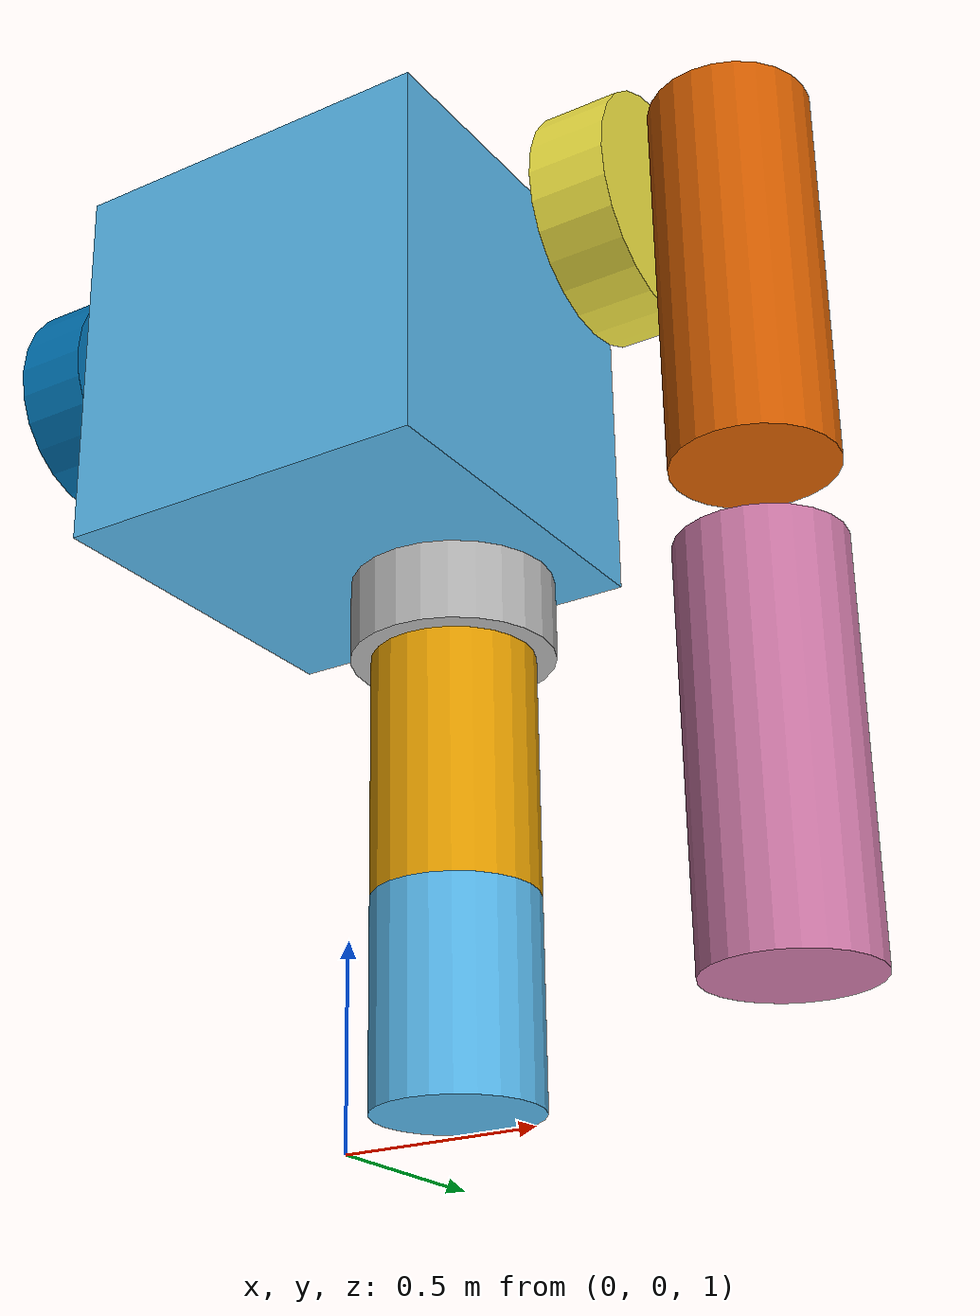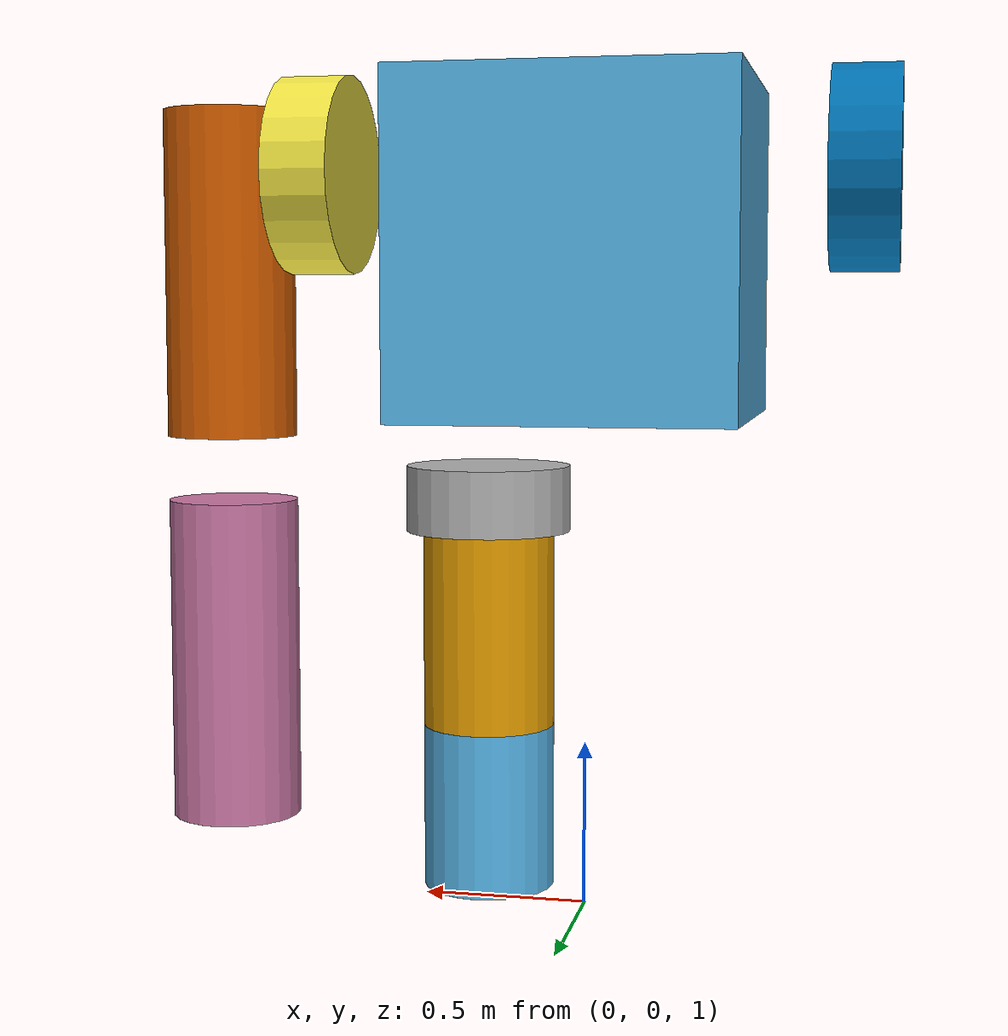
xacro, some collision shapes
<?xml version="1.0"?>
    <robot xmlns:xacro="http://ros.org/wiki/xacro" name="practice_creation">

        <link name="world"></link>

        <joint name="world_to_base" type="fixed">
            <parent link="world"></parent>
            <child link="base"></child>
            <origin xyz="0 0 3" rpy="0 0 0"></origin>
        </joint>

        <link name="base">
            <visual>
                <origin xyz="0 0.25 0" rpy="1.57 0.075 0"/>

                <geometry>
                    <mesh filename="~/simulation/ros2_ws/src/sim_files/meshes/pentagon_shape.stl" scale="0.015 0.015 0.1"/>
                </geometry>
            </visual>

            <collision>
                <geometry>
                    <box size="1 1 1"></box>
                </geometry>
            </collision>

            <inertial>  <!-- These inirtial values are stupid, replace them with something actually real eventually-->
                <mass value="10.0"/>
                <origin xyz="0 0 0" rpy="0 0 0"/>
                <inertia
                ixx="0.1" ixy="0.0" ixz="0.0"
                iyy="0.1" iyz="0.0"
                izz="0.1"/>
            </inertial>
        </link>

        <!-- This is George's head -->

        <joint name="base_to_head" type="fixed">
            <origin xyz="0 0 1"></origin>
            <parent link="base"></parent>
            <child link="george_head"></child>
        </joint>

        <link name="george_head">
            <geometry>
                <mesh filename="~/simulation/ros2_ws/src/sim_files/meshes/george_floyd.glb" scale="1 1 1"></mesh>
            </geometry>

            <inertial>
                <mass value="10.0"/>
                <origin xyz="0 0 0" rpy="0 0 0"/>
                <inertia
                ixx="0.1" ixy="0.0" ixz="0.0"
                iyy="0.1" iyz="0.0"
                izz="0.1"/>
            </inertial>
        </link>

        <!-- This is the right arm -->
        <joint name="base_to_shoulder1" type="revolute">
            <parent link="base"></parent>
            <child link="shoulder1"></child>
            <limit lower="-1.57" upper="1.57" effort="10" velocity="1.0"/>
            <origin xyz="0.72 0 0.23" rpy="0 1.57 0"></origin>
            <axis xyz="0 1 0"/>

        </joint>

        <link name="shoulder1">
            <visual>
                <origin xyz="0 0 0.1" rpy="0 0 0"></origin>
                <geometry>
                    <cylinder radius="0.3" length="0.2"></cylinder>
                </geometry>

            </visual>

            <inertial>
                <mass value="10.0"/>
                <origin xyz="0 0 0" rpy="0 0 0"/>
                <inertia
                ixx="0.1" ixy="0.0" ixz="0.0"
                iyy="0.1" iyz="0.0"
                izz="0.1"/>

            </inertial>
        </link>

        <joint name="base_to_shoulder2" type="revolute">
            <parent link="base"></parent>
            <child link="shoulder2"></child>
            <limit lower="-1.57" upper="1.57" effort="10" velocity="1.0"/>
            <origin xyz="-0.72 0 0.23" rpy="0 1.57 0"></origin>
            <axis xyz="0 1 0"/>

        </joint>

        <link name="shoulder2">
            <visual>
                <origin xyz="0 0 -0.1" rpy="0 0 0"></origin>
                <geometry>
                    <cylinder radius="0.3" length="0.2"></cylinder>
                </geometry>

            </visual>

            <inertial>  <!-- These inirtial values are stupid, replace them with something actually real eventually-->
                <mass value="10.0"/>
                <origin xyz="0 0 0" rpy="0 0 0"/>
                <inertia
                ixx="0.1" ixy="0.0" ixz="0.0"
                iyy="0.1" iyz="0.0"
                izz="0.1"/>
            </inertial>
        </link>

        <joint name="shoulder1_to_upper_arm1" type="revolute">
            <origin xyz="0 0 0.2" rpy="0 0 0"></origin>
            <parent link="shoulder1"></parent>
            <child link="upper_arm1"></child>
            <axis xyz="0 0 1"></axis>
            <limit lower="-1.57" upper="1.57" effort="10" velocity="1.0"/>
        </joint>

        <link name="upper_arm1">
            <visual>
                <origin xyz="0.3 0 0.2" rpy="0 1.57 0"></origin>
                <geometry>
                    <cylinder radius="0.2" length="1"></cylinder>
                </geometry>
            </visual>

            <inertial>  <!-- These inirtial values are stupid, replace them with something actually real eventually-->
                <mass value="10.0"/>
                <origin xyz="0 0 0" rpy="0 0 0"/>
                <inertia
                ixx="0.1" ixy="0.0" ixz="0.0"
                iyy="0.1" iyz="0.0"
                izz="0.1"/>
            </inertial>
        </link>

        <joint name="upper_arm1_to_lower_arm1" type="revolute">
            <origin xyz="0.8 0 0.2"></origin>
            <parent link="upper_arm1"></parent>
            <child link="lower_arm1"></child>
            <axis xyz="0 0 1"></axis>
            <limit lower="-1.57" upper="1.57" effort="10" velocity="1.0"/>
        </joint>

        <link name="lower_arm1">
            <visual>
                <origin xyz="0.7 0 0" rpy="0 1.57 0"></origin>
                <geometry>
                    <cylinder radius="0.2" length="1"></cylinder>
                </geometry>
            </visual>

            <inertial>  <!-- These inirtial values are stupid, replace them with something actually real eventually-->
                <mass value="10.0"/>
                <origin xyz="0 0 0" rpy="0 0 0"/>
                <inertia
                ixx="0.1" ixy="0.0" ixz="0.0"
                iyy="0.1" iyz="0.0"
                izz="0.1"/>
            </inertial>
        </link>
        <!-- end of right arm description-->

        <!-- Right leg description -->

        <joint name="right_hip_to_base" type="revolute">
            <origin xyz="0.3 0 -0.65"></origin>
            <parent link="base"></parent>
            <child link="right_hip"></child>
            <axis xyz="0 1 0"></axis>
            <limit lower="-1.57" upper="1.57" effort="10" velocity="1.0"/>
        </joint>

        <link name="right_hip">
            <visual>
                <origin xyz="0 0 -0.1" rpy="0 0 0"></origin>
                <geometry>
                    <cylinder radius="0.25" length="0.2"></cylinder>
                </geometry>
            </visual>

            <inertial>  <!-- These inirtial values are stupid, replace them with something actually real eventually-->
                <mass value="10.0"/>
                <origin xyz="0 0 0" rpy="0 0 0"/>
                <inertia
                ixx="0.1" ixy="0.0" ixz="0.0"
                iyy="0.1" iyz="0.0"
                izz="0.1"/>
            </inertial>
        </link>

        <joint name="hip_to_upper_right_leg" type="revolute">
            <origin xyz="0 0 -0.2"></origin>
            <parent link="right_hip"></parent>
            <child link="upper_right_leg"></child>
            <axis xyz="1 0 0"></axis>
            <limit lower="-1.57" upper="1.57" effort="10" velocity="1.0"/>
        </joint>

        <link name="upper_right_leg" type="revolute">
            <visual>
                <origin xyz="0 0 -0.3"></origin>
                <geometry>
                    <cylinder radius="0.2" length="0.6"></cylinder>
                </geometry>
            </visual>

            <inertial>  <!-- These inirtial values are stupid, replace them with something actually real eventually-->
                <mass value="10.0"/>
                <origin xyz="0 0 0" rpy="0 0 0"/>
                <inertia
                ixx="0.1" ixy="0.0" ixz="0.0"
                iyy="0.1" iyz="0.0"
                izz="0.1"/>
            </inertial>
        </link>

        <joint name="upper_right_leg_to_lower_right_leg" type="revolute">
            <origin xyz="0 0 -0.6"></origin>
            <parent link="upper_right_leg"></parent>
            <child link="lower_right_leg"></child>
            <axis xyz="1 0 0"></axis>
            <limit lower="-1.57" upper="1.57" effort="10" velocity="1.0"/>
        </joint>

        <link name="lower_right_leg">
            <visual>
                <origin xyz="0 0 -0.25"></origin>
                <geometry>
                    <cylinder radius="0.2" length="0.5"></cylinder>
                </geometry>
            </visual>

            <inertial>  <!-- These inirtial values are stupid, replace them with something actually real eventually-->
                <mass value="10.0"/>
                <origin xyz="0 0 0" rpy="0 0 0"/>
                <inertia
                ixx="0.1" ixy="0.0" ixz="0.0"
                iyy="0.1" iyz="0.0"
                izz="0.1"/>
            </inertial>
        </link>
    </robot>
